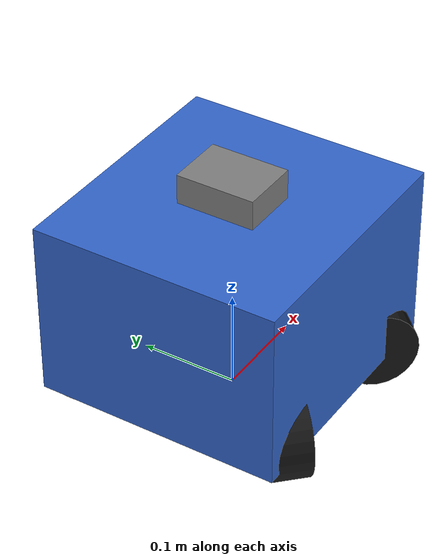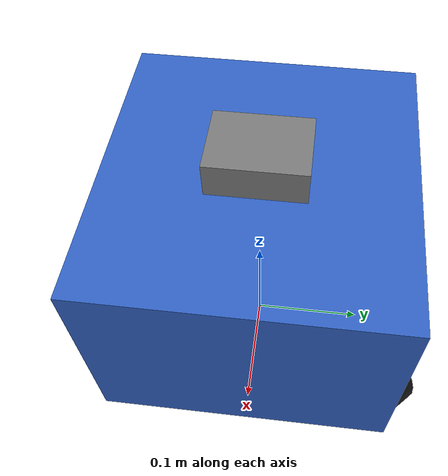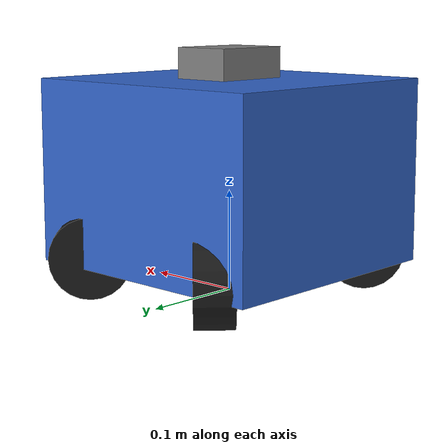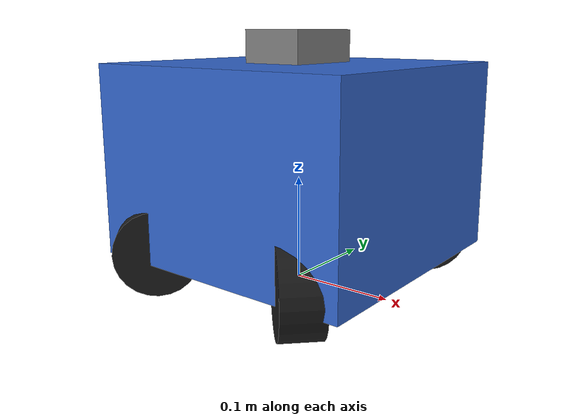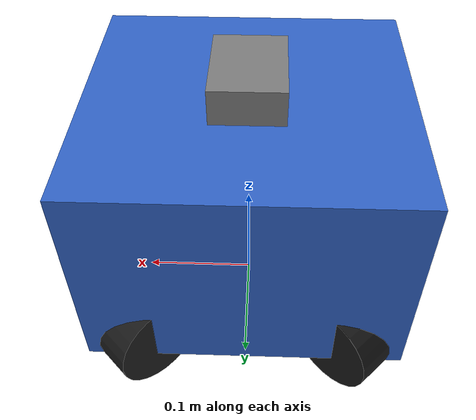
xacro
<?xml version="1.0"?>
<robot xmlns:xacro="http://www.ros.org/wiki/xacro" name="mecanum_bot">

    <xacro:property name="PI" value="3.1415926535897931"/>

    <xacro:property name="chassis_length" value="0.265"/>
    <xacro:property name="chassis_width" value="0.25"/>
    <xacro:property name="chassis_height" value="0.18"/> <xacro:property name="ground_clearance" value="0.03"/>

    <xacro:property name="wheel_radius" value="0.04"/>
    <xacro:property name="wheel_width" value="0.037"/>
    <xacro:property name="wheel_separation_x" value="0.165"/> <xacro:property name="wheel_separation_y" value="0.215"/> <xacro:property name="base_link_z_offset" value="${ground_clearance + chassis_height / 2.0}"/> <xacro:property name="wheel_z_offset" value="${wheel_radius - base_link_z_offset}"/> <xacro:property name="wheel_x_offset" value="${wheel_separation_x / 2.0}"/>
    <xacro:property name="wheel_y_offset" value="${wheel_separation_y / 2.0}"/>

    <xacro:property name="camera_x_offset" value="0"/> <xacro:property name="camera_y_offset" value="0"/> <xacro:property name="camera_z_offset" value="${chassis_height / 2.0 + 0.01}"/> <xacro:property name="camera_size_x" value="0.06"/> <xacro:property name="camera_size_y" value="0.08"/> <xacro:property name="camera_size_z" value="0.04"/> <xacro:property name="base_mass" value="2.5"/> <xacro:property name="wheel_mass" value="0.2"/> <xacro:property name="camera_mass" value="0.3"/> <link name="base_footprint"/>

    <link name="base_link">
        <visual>
            <origin xyz="0 0 0" rpy="0 0 0"/>
            <geometry>
                <box size="${chassis_length} ${chassis_width} ${chassis_height}"/>
            </geometry>
            <material name="blue">
                <color rgba="0.2 0.4 0.8 1"/>
            </material>
        </visual>
        <collision>
            <origin xyz="0 0 0" rpy="0 0 0"/>
            <geometry>
                <box size="${chassis_length} ${chassis_width} ${chassis_height}"/>
            </geometry>
        </collision>
        <inertial>
            <mass value="${base_mass}"/>
            <origin xyz="0 0 0" rpy="0 0 0"/>
            <inertia ixx="${base_mass / 12.0 * (chassis_width*chassis_width + chassis_height*chassis_height)}" ixy="0.0" ixz="0.0"
                     iyy="${base_mass / 12.0 * (chassis_length*chassis_length + chassis_height*chassis_height)}" iyz="0.0"
                     izz="${base_mass / 12.0 * (chassis_length*chassis_length + chassis_width*chassis_width)}" />
        </inertial>
    </link>

    <joint name="base_footprint_joint" type="fixed">
        <parent link="base_footprint"/>
        <child link="base_link"/>
        <origin xyz="0 0 ${base_link_z_offset}" rpy="0 0 0"/>
    </joint>

    <link name="camera_link">
         <visual>
            <origin xyz="0 0 0" rpy="0 0 0"/>
            <geometry>
                <box size="${camera_size_x} ${camera_size_y} ${camera_size_z}"/>
            </geometry>
            <material name="grey">
                <color rgba="0.5 0.5 0.5 1"/>
            </material>
        </visual>
        <collision>
             <origin xyz="0 0 0" rpy="0 0 0"/>
             <geometry>
                <box size="${camera_size_x} ${camera_size_y} ${camera_size_z}"/>
            </geometry>
        </collision>
         <inertial>
            <mass value="${camera_mass}"/>
            <origin xyz="0 0 0" rpy="0 0 0"/>
            <inertia ixx="${camera_mass / 12.0 * (camera_size_y*camera_size_y + camera_size_z*camera_size_z)}" ixy="0.0" ixz="0.0"
                     iyy="${camera_mass / 12.0 * (camera_size_x*camera_size_x + camera_size_z*camera_size_z)}" iyz="0.0"
                     izz="${camera_mass / 12.0 * (camera_size_x*camera_size_x + camera_size_y*camera_size_y)}" />
        </inertial>
    </link>

    <joint name="camera_joint" type="fixed">
        <parent link="base_link"/>
        <child link="camera_link"/>
        <origin xyz="${camera_x_offset} ${camera_y_offset} ${camera_z_offset}" rpy="0 0 0"/> </joint>

    <xacro:macro name="wheel" params="prefix x_reflect y_reflect yaw_reflect">
        <link name="${prefix}_wheel_link">
            <visual>
                <origin xyz="0 0 0" rpy="${PI/2} 0 0"/>
                <geometry>
                    <cylinder radius="${wheel_radius}" length="${wheel_width}"/>
                </geometry>
                <material name="black">
                    <color rgba="0.1 0.1 0.1 1"/>
                </material>
            </visual>
            <collision>
                 <origin xyz="0 0 0" rpy="${PI/2} 0 0"/>
                <geometry>
                    <cylinder radius="${wheel_radius}" length="${wheel_width}"/>
                </geometry>
            </collision>
            <inertial>
                <mass value="${wheel_mass}"/>
                 <origin xyz="0 0 0" rpy="${PI/2} 0 0"/>
                 <inertia ixx="${wheel_mass/12.0*(3*wheel_radius*wheel_radius + wheel_width*wheel_width)}" ixy="0.0" ixz="0.0"
                          iyy="${wheel_mass/2.0*(wheel_radius*wheel_radius)}" iyz="0.0"
                          izz="${wheel_mass/12.0*(3*wheel_radius*wheel_radius + wheel_width*wheel_width)}"/>
            </inertial>
        </link>

        <joint name="${prefix}_wheel_joint" type="continuous">
            <parent link="base_link"/>
            <child link="${prefix}_wheel_link"/>
            <origin xyz="${x_reflect * wheel_x_offset} ${y_reflect * wheel_y_offset} ${wheel_z_offset}" rpy="0 0 ${yaw_reflect * PI/4}"/>
            <axis xyz="0 1 0"/>
             <limit effort="100" velocity="100"/> </joint>

        <transmission name="${prefix}_wheel_trans">
            <type>transmission_interface/SimpleTransmission</type>
            <joint name="${prefix}_wheel_joint">
                <hardwareInterface>hardware_interface/VelocityJointInterface</hardwareInterface> </joint>
            <actuator name="${prefix}_wheel_motor">
                <hardwareInterface>hardware_interface/VelocityJointInterface</hardwareInterface>
                <mechanicalReduction>1</mechanicalReduction>
            </actuator>
        </transmission>

    </xacro:macro>

    <xacro:wheel prefix="front_left"  x_reflect="1"  y_reflect="1"  yaw_reflect="1"/>   <xacro:wheel prefix="front_right" x_reflect="1"  y_reflect="-1" yaw_reflect="-1"/>  <xacro:wheel prefix="rear_left"   x_reflect="-1" y_reflect="1"  yaw_reflect="-1"/>  <xacro:wheel prefix="rear_right"  x_reflect="-1" y_reflect="-1" yaw_reflect="1"/>   </robot>
